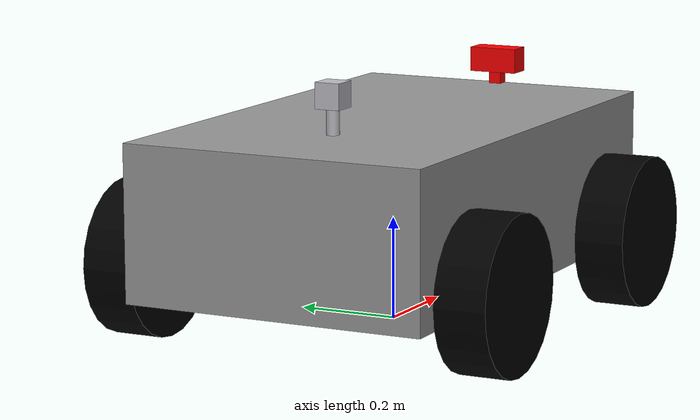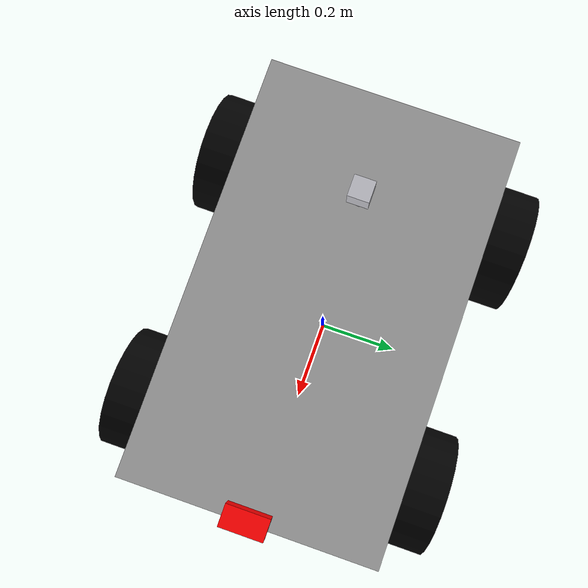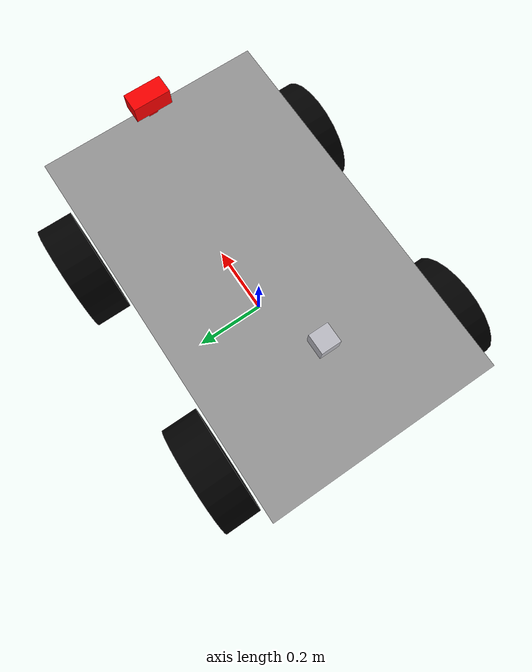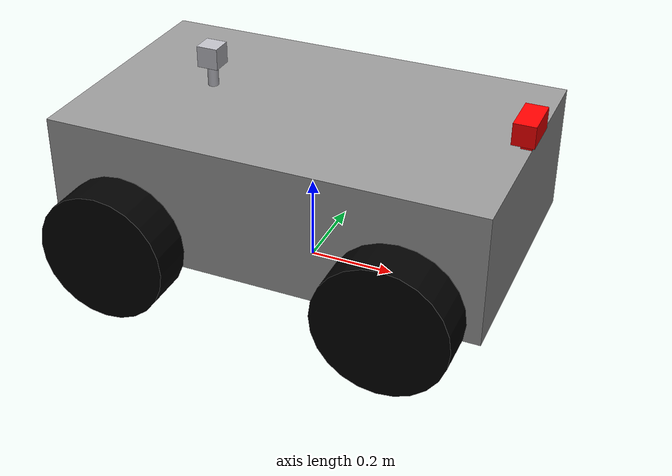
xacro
<?xml version="1.0"?>
<robot xmlns:xacro="http://www.ros.org/wiki/xacro" name="four_wheel_robot">

  <!-- Material definitions -->
  <material name="white">
    <color rgba="1 1 1 1"/>
  </material>
  <material name="orange">
    <color rgba="1 0.3 0.1 1"/>
  </material>
  <material name="blue">
    <color rgba="0.2 0.2 1 1"/>
  </material>
  <material name="black">
    <color rgba="0 0 0 1"/>
  </material>
  <material name="red">
    <color rgba="1 0 0 1"/>
  </material>

  <!-- Body dimensions -->
  <xacro:property name="body_link_x_dim" value="1"/>
  <xacro:property name="body_link_y_dim" value="0.6"/>
  <xacro:property name="body_link_z_dim" value="0.3"/>

  <!-- Wheel dimensions -->
  <xacro:property name="wheel_link_radius" value="0.15"/>
  <xacro:property name="wheel_link_length" value="0.1"/>
  <xacro:property name="wheel_link_z_location" value="-0.1"/>

  <!-- Sensor dimensions -->
  <xacro:property name="sensor_side" value="0.05"/>

  <!-- Material density -->
  <xacro:property name="body_density" value="2710.0"/>
  <xacro:property name="wheel_density" value="2710.0"/>

  <!-- PI Constant -->
  <xacro:property name="pi_const" value="3.14159265"/>

  <!-- Robot body and wheel mass -->
  <xacro:property name="sensor_mass" value="0.5"/>
  <xacro:property name="body_mass" value="${body_density * body_link_x_dim * body_link_y_dim * body_link_z_dim}"/>
  <xacro:property name="wheel_mass" value="${wheel_density * pi_const * wheel_link_radius * wheel_link_radius * wheel_link_length}"/>

  <!-- Moments of inertia of the wheel -->
  <xacro:property name="Iz_wheel" value="${0.5 * wheel_mass * wheel_link_radius * wheel_link_radius}"/>
  <xacro:property name="I_wheel" value="${(1.0/12.0) * wheel_mass * (3.0 * wheel_link_radius * wheel_link_radius + wheel_link_length * wheel_link_length)}"/>

  <!-- Dummy link -->
  <link name="base_link"/>

  <!-- Body link -->
  <link name="body_link">
    <visual>
      <geometry>
        <box size="${body_link_x_dim} ${body_link_y_dim} ${body_link_z_dim}"/>
      </geometry>
      <origin rpy="0 0 ${pi}" xyz="0 0 0"/>
      <material name="grey"/>
    </visual>
    <collision>
      <geometry>
        <box size="${body_link_x_dim} ${body_link_y_dim} ${body_link_z_dim}"/>
      </geometry>
      <origin rpy="0 0 ${pi}" xyz="0 0 0"/>
    </collision>
    <inertial>
      <origin rpy="0 0 ${pi}" xyz="0 0 0"/>
      <mass value="${body_mass}"/>
      <inertia ixx="${(1.0/12.0)*body_mass*(body_link_y_dim*body_link_y_dim + body_link_z_dim*body_link_z_dim)}" ixy="0" ixz="0" iyy="${(1.0/12.0)*body_mass*(body_link_x_dim*body_link_x_dim + body_link_z_dim*body_link_z_dim)}" iyz="0" izz="${(1.0/12.0)*body_mass*(body_link_y_dim*body_link_y_dim + body_link_x_dim*body_link_x_dim)}"/>
    </inertial>
  </link>
  <gazebo reference="body_link">
    <material>Gazebo/Grey</material>
  </gazebo>

  <!-- Fixed joint between dummy and body -->
  <joint name="base_joint" type="fixed">
    <parent link="base_link"/>
    <child link="body_link"/>
    <origin xyz="0 0 0.25"/>
  </joint>

  <!-- Wheel macro -->
  <xacro:macro name="wheel" params="name x y z joint_type rpy axis">
    <link name="${name}">
      <visual>
        <geometry>
          <cylinder radius="${wheel_link_radius}" length="${wheel_link_length}"/>
        </geometry>
        <origin rpy="0 0 0" xyz="0 0 0"/>
        <material name="black"/>
      </visual>
      <collision>
        <geometry>
          <cylinder radius="${wheel_link_radius}" length="${wheel_link_length}"/>
        </geometry>
        <origin rpy="0 0 0" xyz="0 0 0"/>
      </collision>
      <inertial>
        <origin rpy="0 0 0" xyz="0 0 0"/>
        <mass value="${wheel_mass}"/>
        <inertia ixx="${I_wheel}" ixy="0" ixz="0" iyy="${I_wheel}" iyz="0" izz="${Iz_wheel}"/>
      </inertial>
    </link>
    <gazebo reference="${name}">
      <material>Gazebo/Black</material>
    </gazebo>
    <joint name="${name}_joint" type="${joint_type}">
      <parent link="body_link"/>
      <child link="${name}"/>
      <origin xyz="${x} ${y} ${z}" rpy="${rpy}"/>
      <axis xyz="${axis}"/>
      <limit effort="1000" velocity="1000"/>
      <dynamics damping="1.0" friction="1.0"/>
    </joint>
  </xacro:macro>

  <!-- Instantiate wheels -->
  <xacro:wheel name="rear_right_wheel" x="${-body_link_x_dim/2 + 1.2*wheel_link_radius}" y="${-body_link_y_dim/2 - 1.2*wheel_link_length/2}" z="${wheel_link_z_location}" rpy="${pi/2} 0 0" axis="0 0 -1" joint_type="continuous"/>
  <xacro:wheel name="rear_left_wheel" x="${-body_link_x_dim/2 + 1.2*wheel_link_radius}" y="${body_link_y_dim/2 + 1.2*wheel_link_length/2}" z="${wheel_link_z_location}" rpy="-${pi/2} 0 0" axis="0 0 1" joint_type="continuous"/>
  <xacro:wheel name="front_right_wheel" x="${body_link_x_dim/2 - 1.2*wheel_link_radius}" y="${-body_link_y_dim/2 - 1.2*wheel_link_length/2}" z="${wheel_link_z_location}" rpy="${pi/2} 0 0" axis="0 0 -1" joint_type="continuous"/>
  <xacro:wheel name="front_left_wheel" x="${body_link_x_dim/2 - 1.2*wheel_link_radius}" y="${body_link_y_dim/2 + 1.2*wheel_link_length/2}" z="${wheel_link_z_location}" rpy="-${pi/2} 0 0" axis="0 0 1" joint_type="continuous"/>

  <!-- Camera -->
  <link name="camera_link">
    <visual>
      <origin xyz="0 0 0"/>
      <geometry>
        <cylinder radius="${sensor_side/4}" length="${sensor_side}"/>
      </geometry>
      <material name="silver"/>
    </visual>
    <visual>
      <geometry>
        <box size="${sensor_side} ${sensor_side} ${sensor_side}"/>
      </geometry>
      <origin rpy="0 0 0" xyz="0 0 ${sensor_side}"/>
      <material name="silver"/>
    </visual>
    <collision>
      <geometry>
        <box size="${sensor_side} ${sensor_side} ${sensor_side}"/>
      </geometry>
      <origin rpy="0 0 0" xyz="0 0 0"/>
    </collision>
    <inertial>
      <origin rpy="0 0 0" xyz="0 0 0"/>
      <mass value="${sensor_mass}"/>
      <inertia ixx="1e-6" ixy="0.0" ixz="0.0" iyy="1e-6" iyz="0.0" izz="1e-6"/>
    </inertial>
  </link>
  <gazebo reference="camera_link">
    <material>Gazebo/Silver</material>
  </gazebo>
  <joint name="camera_joint" type="fixed">
    <parent link="body_link"/>
    <child link="camera_link"/>
    <origin xyz="${-body_link_x_dim/4} 0 ${body_link_z_dim/2 + sensor_side/2}"/>
    <axis xyz="0 1 0"/>
  </joint>

  <!-- Sonar -->
  <link name="sonar_link">
    <visual>
      <geometry>
        <box size="${sensor_side} ${2*sensor_side} ${sensor_side}"/>
      </geometry>
      <origin rpy="0 0 0" xyz="0 0 ${sensor_side/2}"/>
      <material name="red"/>
    </visual>
    <visual>
      <geometry>
        <box size="${sensor_side/2} ${sensor_side/2} ${sensor_side}"/>
      </geometry>
      <origin rpy="0 0 0" xyz="0 0 0"/>
      <material name="red"/>
    </visual>
    <collision>
      <geometry>
        <box size="${sensor_side} ${sensor_side} ${sensor_side}"/>
      </geometry>
      <origin rpy="0 0 0" xyz="0 0 0"/>
    </collision>
    <inertial>
      <origin rpy="0 0 0" xyz="0 0 0"/>
      <mass value="${sensor_mass}"/>
      <inertia ixx="1e-6" ixy="0.0" ixz="0.0" iyy="1e-6" iyz="0.0" izz="1e-6"/>
    </inertial>
  </link>
  <gazebo reference="sonar_link">
    <material>Gazebo/Red</material>
  </gazebo>
  <joint name="sonar_joint" type="fixed">
    <parent link="body_link"/>
    <child link="sonar_link"/>
    <origin xyz="${body_link_x_dim/2 - sensor_side/4} 0 ${body_link_z_dim/2 + sensor_side/2}"/>
    <axis xyz="0 1 0"/>
  </joint>

</robot>
